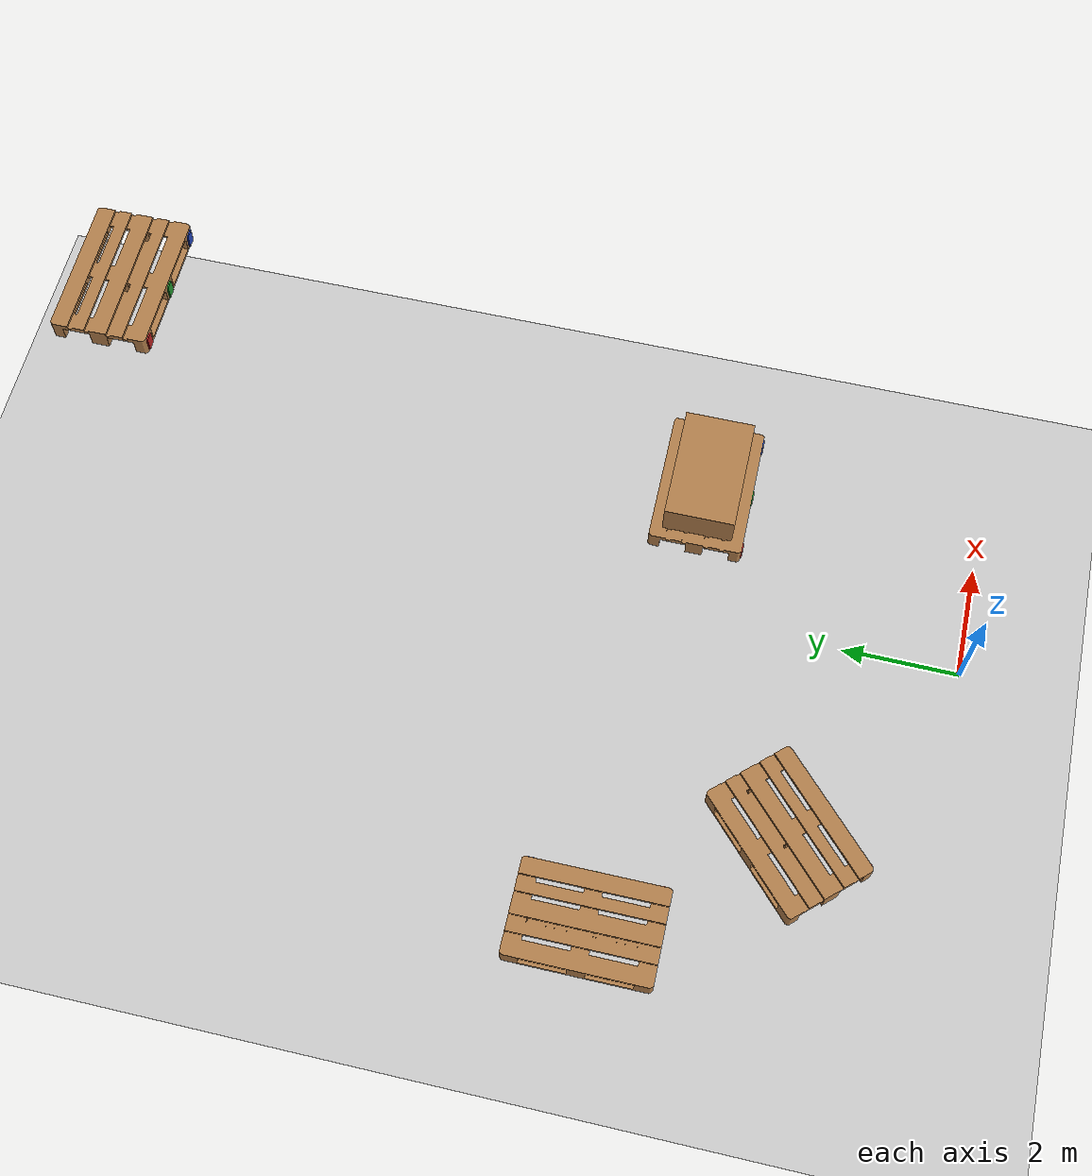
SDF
<sdf version="1.4">
 <world name="default">
  <light name="sun" type="directional">
   <pose>0 0 10 0 -0 0</pose>
   <diffuse>0.8 0.8 0.8 1</diffuse>
   <specular>0.2 0.2 0.2 1</specular>
   <attenuation>
    <range>1000</range>
    <constant>0.9</constant>
    <linear>0.01</linear>
    <quadratic>0.001</quadratic>
   </attenuation>
   <direction>0.5 0.1 -0.9</direction>
  </light>
  <model name="ground_plane">
   <static>1</static>
   <link name="link">
    <collision name="collision">
     <geometry><plane><normal>0 0 1</normal><size>100 100</size></plane></geometry>
     <surface><friction><ode><mu>100</mu><mu2>50</mu2></ode></friction></surface>
    </collision>
    <visual name="visual">
     <cast_shadows>0</cast_shadows>
     <geometry><plane><normal>0 0 1</normal><size>100 100</size></plane></geometry>
     <material>
      <script><uri>file://media/materials/scripts/gazebo.material</uri><name>Gazebo/Grey</name></script>
     </material>
    </visual>
    <velocity_decay><linear>0</linear><angular>0</angular></velocity_decay>
   </link>
  </model>
  <physics type="ode">
   <ode>
    <solver type="quick" dt="0.001" iters="1000" sor="1.3"/>
    <constraints cfm="0.0" erp="1.0" contact_max_correcting_vel="0.0" contact_surface_layer="0.0"/>
   </ode>
   <gravity>0 0 -9.8</gravity>
  </physics>
  <scene><ambient>0.4 0.4 0.4 1</ambient><background>0.7 0.7 0.7 1</background><shadows>1</shadows></scene>
  <model name="factory">
   <static>1</static>
   <pose>-40 -40 -30.0 0 -0 0</pose>
   <link name="walls">
    <collision name="collision">
     <geometry><mesh><uri>file:///home/qiu/factory.stl</uri><scale>0.1 0.1 0.10</scale></mesh></geometry>
    </collision>
    <visual name="visual">
     <geometry><mesh><uri>file:///home/qiu/factory.stl</uri><scale>0.10 0.10 0.10</scale></mesh></geometry>
     <material>
      <script><uri>file://media/materials/scripts/gazebo.material</uri><name>Gazebo/Brick</name></script>
     </material>
     <cast_shadows>0</cast_shadows>
    </visual>
    <velocity_decay><linear>0</linear><angular>0</angular></velocity_decay>
   </link>
  </model>
  <model name="palette0">
   <static>0</static>
   <pose>1.0 4.0 0.50 0 -0 0</pose>
   <link name="pal">
    <inertial>
     <pose>1.150 0.8 0.0 0 -0 0</pose>
     <inertia><ixx>20.05</ixx><ixy>0</ixy><ixz>0</ixz><iyy>20.05</iyy><iyz>0</iyz><izz>20.05</izz></inertia>
     <mass>10</mass>
    </inertial>
    <collision name="collision0">
     <pose>1.150 0.8 0.12 0 -0 0</pose>
     <geometry><box><size>2.3 1.6 0.04</size></box></geometry>
     <max_contacts>40</max_contacts>
     <surface>
      <friction><ode><mu>1000000.01</mu><mu2>1000000.01</mu2></ode></friction>
      <contact><ode soft_erp="1" max_vel="0"/></contact>
     </surface>
    </collision>
    <collision name="collision1">
     <pose>0.05 0.8 0.1 0 -0 0</pose>
     <geometry><box><size>0.1 1.6 0.20</size></box></geometry>
     <surface>
      <friction><ode><mu>1000000.01</mu><mu2>1000000.01</mu2></ode></friction>
      <contact><ode soft_erp="1" max_vel="0"/></contact>
     </surface>
    </collision>
    <collision name="collision2">
     <pose>2.25 0.8 0.1 0 -0 0</pose>
     <geometry><box><size>0.1 1.6 0.20</size></box></geometry>
     <surface>
      <friction><ode><mu>1000000.01</mu><mu2>1000000.01</mu2></ode></friction>
      <contact><ode soft_erp="1" max_vel="0"/></contact>
     </surface>
    </collision>
    <visual name="visual">
     <geometry><mesh><uri>file:///home/qiu/Palette.stl</uri><scale>0.02 0.02 0.02</scale></mesh></geometry>
     <material>
      <script><uri>file://media/materials/scripts/gazebo.material</uri><name>Gazebo/WoodPallet</name></script>
     </material>
     <cast_shadows>0</cast_shadows>
    </visual>
    <visual name="rsymbol">
     <pose>0.15 0.0 0.150 0 -0 0</pose>
     <geometry><box><size>0.16 0.04 0.250</size></box></geometry>
     <material>
      <script><uri>file://media/materials/scripts/gazebo.material</uri><name>Gazebo/Red</name></script>
     </material>
    </visual>
    <visual name="gsymbol">
     <pose>1.2 0.0 0.150 0 -0 0</pose>
     <geometry><box><size>0.16 0.04 0.250</size></box></geometry>
     <material>
      <script><uri>file://media/materials/scripts/gazebo.material</uri><name>Gazebo/Green</name></script>
     </material>
    </visual>
    <visual name="bsymbol">
     <pose>2.25 0.0 0.150 0 -0 0</pose>
     <geometry><box><size>0.16 0.04 0.250</size></box></geometry>
     <material>
      <script><uri>file://media/materials/scripts/gazebo.material</uri><name>Gazebo/Blue</name></script>
     </material>
    </visual>
    <collision name="box">
     <pose>1.2 0.8 0.60 0 -0 0</pose>
     <geometry><box><size>2.0 1.2 0.60</size></box></geometry>
     <surface><friction><ode><mu>100.01</mu><mu2>100.01</mu2></ode></friction></surface>
    </collision>
    <visual name="visual1">
     <pose>1.2 0.8 0.60 0 -0 0</pose>
     <geometry><box><size>2.0 1.2 0.60</size></box></geometry>
     <material>
      <script><uri>file://media/materials/scripts/gazebo.material</uri><name>Gazebo/Wood</name></script>
     </material>
    </visual>
    <velocity_decay><linear>0</linear><angular>0</angular></velocity_decay>
   </link>
  </model>
  <model name="palette1">
   <static>0</static>
   <pose>-5.0 4.0 0.50 0 -0 1.5707</pose>
   <link name="pal">
    <inertial>
     <pose>1.150 0.8 0.0 0 -0 0</pose>
     <inertia><ixx>20.05</ixx><ixy>0</ixy><ixz>0</ixz><iyy>20.05</iyy><iyz>0</iyz><izz>20.05</izz></inertia>
     <mass>10</mass>
    </inertial>
    <collision name="collision0">
     <pose>1.150 0.8 0.12 0 -0 0</pose>
     <geometry><box><size>2.3 1.6 0.04</size></box></geometry>
     <max_contacts>40</max_contacts>
     <surface>
      <friction><ode><mu>1000000.01</mu><mu2>1000000.01</mu2></ode></friction>
      <contact><ode soft_erp="1" max_vel="0"/></contact>
     </surface>
    </collision>
    <collision name="collision1">
     <pose>0.05 0.8 0.1 0 -0 0</pose>
     <geometry><box><size>0.1 1.6 0.20</size></box></geometry>
     <surface>
      <friction><ode><mu>1000000.01</mu><mu2>1000000.01</mu2></ode></friction>
      <contact><ode soft_erp="1" max_vel="0"/></contact>
     </surface>
    </collision>
    <collision name="collision2">
     <pose>2.25 0.8 0.1 0 -0 0</pose>
     <geometry><box><size>0.1 1.6 0.20</size></box></geometry>
     <surface>
      <friction><ode><mu>1000000.01</mu><mu2>1000000.01</mu2></ode></friction>
      <contact><ode soft_erp="1" max_vel="0"/></contact>
     </surface>
    </collision>
    <visual name="visual">
     <geometry><mesh><uri>file:///home/qiu/Palette.stl</uri><scale>0.02 0.02 0.02</scale></mesh></geometry>
     <material>
      <script><uri>file://media/materials/scripts/gazebo.material</uri><name>Gazebo/WoodPallet</name></script>
     </material>
     <cast_shadows>0</cast_shadows>
    </visual>
    <visual name="rsymbol">
     <pose>0.15 0.0 0.150 0 -0 0</pose>
     <geometry><box><size>0.16 0.04 0.250</size></box></geometry>
     <material>
      <script><uri>file://media/materials/scripts/gazebo.material</uri><name>Gazebo/Red</name></script>
     </material>
    </visual>
    <visual name="gsymbol">
     <pose>1.2 0.0 0.150 0 -0 0</pose>
     <geometry><box><size>0.16 0.04 0.250</size></box></geometry>
     <material>
      <script><uri>file://media/materials/scripts/gazebo.material</uri><name>Gazebo/Green</name></script>
     </material>
    </visual>
    <visual name="bsymbol">
     <pose>2.25 0.0 0.150 0 -0 0</pose>
     <geometry><box><size>0.16 0.04 0.250</size></box></geometry>
     <material>
      <script><uri>file://media/materials/scripts/gazebo.material</uri><name>Gazebo/Blue</name></script>
     </material>
    </visual>
    <velocity_decay><linear>0</linear><angular>0</angular></velocity_decay>
   </link>
  </model>
  <model name="palette2">
   <static>0</static>
   <pose>-4.0 1.0 0.50 0 -0 0.75</pose>
   <link name="pal">
    <inertial>
     <pose>1.150 0.8 0.0 0 -0 0</pose>
     <inertia><ixx>2.05</ixx><ixy>0</ixy><ixz>0</ixz><iyy>2.05</iyy><iyz>0</iyz><izz>2.05</izz></inertia>
     <mass>5</mass>
    </inertial>
    <collision name="collision">
     <geometry><mesh><uri>file:///home/qiu/Palette.stl</uri><scale>0.02 0.02 0.02</scale></mesh></geometry>
     <surface><friction><ode><mu>1000000.01</mu><mu2>1000000.01</mu2></ode></friction></surface>
    </collision>
    <visual name="visual">
     <geometry><mesh><uri>file:///home/qiu/Palette.stl</uri><scale>0.02 0.02 0.02</scale></mesh></geometry>
     <material>
      <script><uri>file://media/materials/scripts/gazebo.material</uri><name>Gazebo/WoodPallet</name></script>
     </material>
     <cast_shadows>0</cast_shadows>
    </visual>
    <visual name="rsymbol">
     <pose>0.15 0.0 0.150 0 -0 0</pose>
     <geometry><box><size>0.16 0.04 0.250</size></box></geometry>
     <material>
      <script><uri>file://media/materials/scripts/gazebo.material</uri><name>Gazebo/Red</name></script>
     </material>
    </visual>
    <visual name="gsymbol">
     <pose>1.2 0.0 0.150 0 -0 0</pose>
     <geometry><box><size>0.16 0.04 0.250</size></box></geometry>
     <material>
      <script><uri>file://media/materials/scripts/gazebo.material</uri><name>Gazebo/Green</name></script>
     </material>
    </visual>
    <visual name="bsymbol">
     <pose>2.25 0.0 0.150 0 -0 0</pose>
     <geometry><box><size>0.16 0.04 0.250</size></box></geometry>
     <material>
      <script><uri>file://media/materials/scripts/gazebo.material</uri><name>Gazebo/Blue</name></script>
     </material>
    </visual>
    <velocity_decay><linear>0</linear><angular>0</angular></velocity_decay>
   </link>
  </model>
  <model name="palette3">
   <static>0</static>
   <pose>1.0 14.0 3.50 0 -0 0</pose>
   <link name="pal">
    <inertial>
     <pose>1.150 0.8 0.0 0 -0 0</pose>
     <inertia><ixx>2.05</ixx><ixy>0</ixy><ixz>0</ixz><iyy>2.05</iyy><iyz>0</iyz><izz>2.05</izz></inertia>
     <mass>5</mass>
    </inertial>
    <collision name="collision">
     <geometry><mesh><uri>file:///home/qiu/Palette.stl</uri><scale>0.02 0.02 0.02</scale></mesh></geometry>
    </collision>
    <visual name="visual">
     <geometry><mesh><uri>file:///home/qiu/Palette.stl</uri><scale>0.02 0.02 0.02</scale></mesh></geometry>
     <material>
      <script><uri>file://media/materials/scripts/gazebo.material</uri><name>Gazebo/WoodPallet</name></script>
     </material>
     <cast_shadows>0</cast_shadows>
    </visual>
    <visual name="rsymbol">
     <pose>0.15 0.0 0.150 0 -0 0</pose>
     <geometry><box><size>0.16 0.04 0.250</size></box></geometry>
     <material>
      <script><uri>file://media/materials/scripts/gazebo.material</uri><name>Gazebo/Red</name></script>
     </material>
    </visual>
    <visual name="gsymbol">
     <pose>1.2 0.0 0.150 0 -0 0</pose>
     <geometry><box><size>0.16 0.04 0.250</size></box></geometry>
     <material>
      <script><uri>file://media/materials/scripts/gazebo.material</uri><name>Gazebo/Green</name></script>
     </material>
    </visual>
    <visual name="bsymbol">
     <pose>2.25 0.0 0.150 0 -0 0</pose>
     <geometry><box><size>0.16 0.04 0.250</size></box></geometry>
     <material>
      <script><uri>file://media/materials/scripts/gazebo.material</uri><name>Gazebo/Blue</name></script>
     </material>
    </visual>
    <velocity_decay><linear>0</linear><angular>0</angular></velocity_decay>
   </link>
  </model>
 </world>
</sdf>
